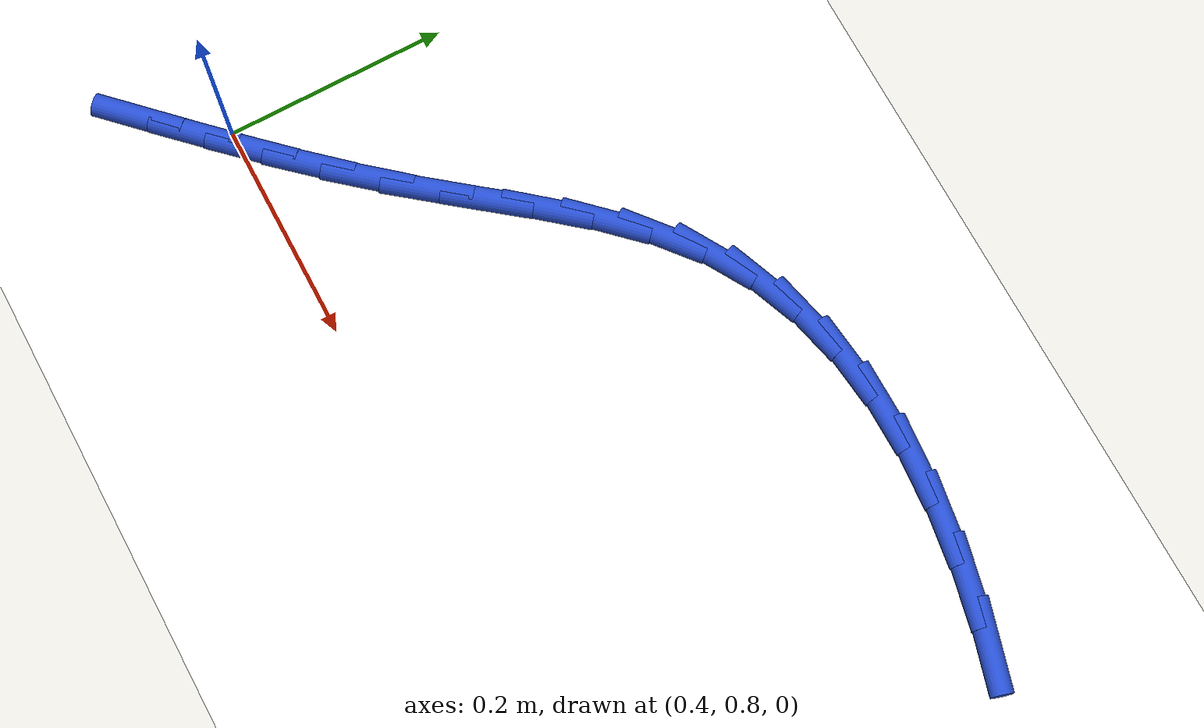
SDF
<sdf version="1.6">
 <world name="default">
  <model name="ground_plane">
   <static>1</static>
   <link name="link">
    <collision name="collision">
     <geometry><plane><normal>0 0 1</normal><size>100 100</size></plane></geometry>
     <surface><friction><ode><mu>100</mu><mu2>50</mu2></ode></friction></surface>
    </collision>
    <visual name="visual">
     <cast_shadows>0</cast_shadows>
     <geometry><plane><normal>0 0 1</normal><size>100 100</size></plane></geometry>
     <material>
      <script><uri>file://media/materials/scripts/gazebo.material</uri><name>Gazebo/WhiteGlow</name></script>
     </material>
    </visual>
   </link>
  </model>
  <model name="line">
   <link name="link_17">
    <pose>0.3527513618849715 0.7361231612320375 0.01 0 1.57 0.7904592188882107</pose>
    <collision name="collision">
     <geometry><cylinder><radius>0.01</radius><length>0.08</length></cylinder></geometry>
    </collision>
    <visual name="visual">
     <material>
      <script><name>Gazebo/Blue</name><uri>file://media/materials/scripts/gazebo.material</uri></script>
     </material>
     <geometry><cylinder><radius>0.01</radius><length>0.08</length></cylinder></geometry>
    </visual>
   </link>
   <link name="link_18">
    <pose>0.38853602461566983 0.7722718859365848 0.01 0 1.57 0.798635704545894</pose>
    <collision name="collision">
     <geometry><cylinder><radius>0.01</radius><length>0.08</length></cylinder></geometry>
    </collision>
    <visual name="visual">
     <material>
      <script><name>Gazebo/Blue</name><uri>file://media/materials/scripts/gazebo.material</uri></script>
     </material>
     <geometry><cylinder><radius>0.01</radius><length>0.08</length></cylinder></geometry>
    </visual>
   </link>
   <link name="link_19">
    <pose>0.42419717517498967 0.8088898906796973 0.01 0 1.57 0.8146304936156704</pose>
    <collision name="collision">
     <geometry><cylinder><radius>0.01</radius><length>0.08</length></cylinder></geometry>
    </collision>
    <visual name="visual">
     <material>
      <script><name>Gazebo/Blue</name><uri>file://media/materials/scripts/gazebo.material</uri></script>
     </material>
     <geometry><cylinder><radius>0.01</radius><length>0.08</length></cylinder></geometry>
    </visual>
   </link>
   <link name="link_20">
    <pose>0.45940820564377716 0.8462221343401879 0.01 0 1.57 0.838385294227599</pose>
    <collision name="collision">
     <geometry><cylinder><radius>0.01</radius><length>0.08</length></cylinder></geometry>
    </collision>
    <visual name="visual">
     <material>
      <script><name>Gazebo/Blue</name><uri>file://media/materials/scripts/gazebo.material</uri></script>
     </material>
     <geometry><cylinder><radius>0.01</radius><length>0.08</length></cylinder></geometry>
    </visual>
   </link>
   <link name="link_21">
    <pose>0.49384250810287994 0.8845135757968723 0.01 0 1.57 0.8698449691581831</pose>
    <collision name="collision">
     <geometry><cylinder><radius>0.01</radius><length>0.08</length></cylinder></geometry>
    </collision>
    <visual name="visual">
     <material>
      <script><name>Gazebo/Blue</name><uri>file://media/materials/scripts/gazebo.material</uri></script>
     </material>
     <geometry><cylinder><radius>0.01</radius><length>0.08</length></cylinder></geometry>
    </visual>
   </link>
   <link name="link_22">
    <pose>0.5271734746331441 0.9240091739285636 0.01 0 1.57 0.9033022148555317</pose>
    <collision name="collision">
     <geometry><cylinder><radius>0.01</radius><length>0.08</length></cylinder></geometry>
    </collision>
    <visual name="visual">
     <material>
      <script><name>Gazebo/Blue</name><uri>file://media/materials/scripts/gazebo.material</uri></script>
     </material>
     <geometry><cylinder><radius>0.01</radius><length>0.08</length></cylinder></geometry>
    </visual>
   </link>
   <link name="link_23">
    <pose>0.5592529554302327 0.9647096972328136 0.01 0 1.57 0.9096914081871098</pose>
    <collision name="collision">
     <geometry><cylinder><radius>0.01</radius><length>0.08</length></cylinder></geometry>
    </collision>
    <visual name="visual">
     <material>
      <script><name>Gazebo/Blue</name><uri>file://media/materials/scripts/gazebo.material</uri></script>
     </material>
     <geometry><cylinder><radius>0.01</radius><length>0.08</length></cylinder></geometry>
    </visual>
   </link>
   <link name="link_24">
    <pose>0.5908619017973593 1.0053445931808394 0.01 0 1.57 0.8788644872899266</pose>
    <collision name="collision">
     <geometry><cylinder><radius>0.01</radius><length>0.08</length></cylinder></geometry>
    </collision>
    <visual name="visual">
     <material>
      <script><name>Gazebo/Blue</name><uri>file://media/materials/scripts/gazebo.material</uri></script>
     </material>
     <geometry><cylinder><radius>0.01</radius><length>0.08</length></cylinder></geometry>
    </visual>
   </link>
   <link name="link_25">
    <pose>0.6230826649361982 1.0442308933882185 0.01 0 1.57 0.8075862672323947</pose>
    <collision name="collision">
     <geometry><cylinder><radius>0.01</radius><length>0.08</length></cylinder></geometry>
    </collision>
    <visual name="visual">
     <material>
      <script><name>Gazebo/Blue</name><uri>file://media/materials/scripts/gazebo.material</uri></script>
     </material>
     <geometry><cylinder><radius>0.01</radius><length>0.08</length></cylinder></geometry>
    </visual>
   </link>
   <link name="link_26">
    <pose>0.6569977532224126 1.0796854144039498 0.01 0 1.57 0.6909134692510166</pose>
    <collision name="collision">
     <geometry><cylinder><radius>0.01</radius><length>0.08</length></cylinder></geometry>
    </collision>
    <visual name="visual">
     <material>
      <script><name>Gazebo/Blue</name><uri>file://media/materials/scripts/gazebo.material</uri></script>
     </material>
     <geometry><cylinder><radius>0.01</radius><length>0.08</length></cylinder></geometry>
    </visual>
   </link>
   <link name="link_27">
    <pose>0.6936896750316655 1.110024972777031 0.01 0 1.57 0.5324112724979416</pose>
    <collision name="collision">
     <geometry><cylinder><radius>0.01</radius><length>0.08</length></cylinder></geometry>
    </collision>
    <visual name="visual">
     <material>
      <script><name>Gazebo/Blue</name><uri>file://media/materials/scripts/gazebo.material</uri></script>
     </material>
     <geometry><cylinder><radius>0.01</radius><length>0.08</length></cylinder></geometry>
    </visual>
   </link>
   <link name="link_28">
    <pose>0.7340582442324246 1.1338085456849667 0.01 0 1.57 0.37359606067586054</pose>
    <collision name="collision">
     <geometry><cylinder><radius>0.01</radius><length>0.08</length></cylinder></geometry>
    </collision>
    <visual name="visual">
     <material>
      <script><name>Gazebo/Blue</name><uri>file://media/materials/scripts/gazebo.material</uri></script>
     </material>
     <geometry><cylinder><radius>0.01</radius><length>0.08</length></cylinder></geometry>
    </visual>
   </link>
   <link name="link_29">
    <pose>0.7779365170944367 1.1510090920091336 0.01 0 1.57 0.2327538355196856</pose>
    <collision name="collision">
     <geometry><cylinder><radius>0.01</radius><length>0.08</length></cylinder></geometry>
    </collision>
    <visual name="visual">
     <material>
      <script><name>Gazebo/Blue</name><uri>file://media/materials/scripts/gazebo.material</uri></script>
     </material>
     <geometry><cylinder><radius>0.01</radius><length>0.08</length></cylinder></geometry>
    </visual>
   </link>
   <link name="link_30">
    <pose>0.8247714683637739 1.1621113197024202 0.01 0 1.57 0.11102685341370921</pose>
    <collision name="collision">
     <geometry><cylinder><radius>0.01</radius><length>0.08</length></cylinder></geometry>
    </collision>
    <visual name="visual">
     <material>
      <script><name>Gazebo/Blue</name><uri>file://media/materials/scripts/gazebo.material</uri></script>
     </material>
     <geometry><cylinder><radius>0.01</radius><length>0.08</length></cylinder></geometry>
    </visual>
   </link>
   <link name="link_31">
    <pose>0.8740095406577862 1.1676006420515974 0.01 0 1.57 0.007082422885703143</pose>
    <collision name="collision">
     <geometry><cylinder><radius>0.01</radius><length>0.08</length></cylinder></geometry>
    </collision>
    <visual name="visual">
     <material>
      <script><name>Gazebo/Blue</name><uri>file://media/materials/scripts/gazebo.material</uri></script>
     </material>
     <geometry><cylinder><radius>0.01</radius><length>0.08</length></cylinder></geometry>
    </visual>
   </link>
   <link name="link_32">
    <pose>0.9250971765938225 1.167962472343436 0.01 0 1.57 -0.08152851986114676</pose>
    <collision name="collision">
     <geometry><cylinder><radius>0.01</radius><length>0.08</length></cylinder></geometry>
    </collision>
    <visual name="visual">
     <material>
      <script><name>Gazebo/Blue</name><uri>file://media/materials/scripts/gazebo.material</uri></script>
     </material>
     <geometry><cylinder><radius>0.01</radius><length>0.08</length></cylinder></geometry>
    </visual>
   </link>
   <link name="link_33">
    <pose>0.9774808187892332 1.1636822238647089 0.01 0 1.57 -0.15749400615234294</pose>
    <collision name="collision">
     <geometry><cylinder><radius>0.01</radius><length>0.08</length></cylinder></geometry>
    </collision>
    <visual name="visual">
     <material>
      <script><name>Gazebo/Blue</name><uri>file://media/materials/scripts/gazebo.material</uri></script>
     </material>
     <geometry><cylinder><radius>0.01</radius><length>0.08</length></cylinder></geometry>
    </visual>
   </link>
   <link name="link_34">
    <pose>1.0306069098613677 1.1552453099021864 0.01 0 1.57 -0.22331830199385183</pose>
    <collision name="collision">
     <geometry><cylinder><radius>0.01</radius><length>0.08</length></cylinder></geometry>
    </collision>
    <visual name="visual">
     <material>
      <script><name>Gazebo/Blue</name><uri>file://media/materials/scripts/gazebo.material</uri></script>
     </material>
     <geometry><cylinder><radius>0.01</radius><length>0.08</length></cylinder></geometry>
    </visual>
   </link>
   <link name="link_35">
    <pose>1.0839218924275749 1.1431371437426399 0.01 0 1.57 -0.2811842125609918</pose>
    <collision name="collision">
     <geometry><cylinder><radius>0.01</radius><length>0.08</length></cylinder></geometry>
    </collision>
    <visual name="visual">
     <material>
      <script><name>Gazebo/Blue</name><uri>file://media/materials/scripts/gazebo.material</uri></script>
     </material>
     <geometry><cylinder><radius>0.01</radius><length>0.08</length></cylinder></geometry>
    </visual>
   </link>
  </model>
 </world>
</sdf>
